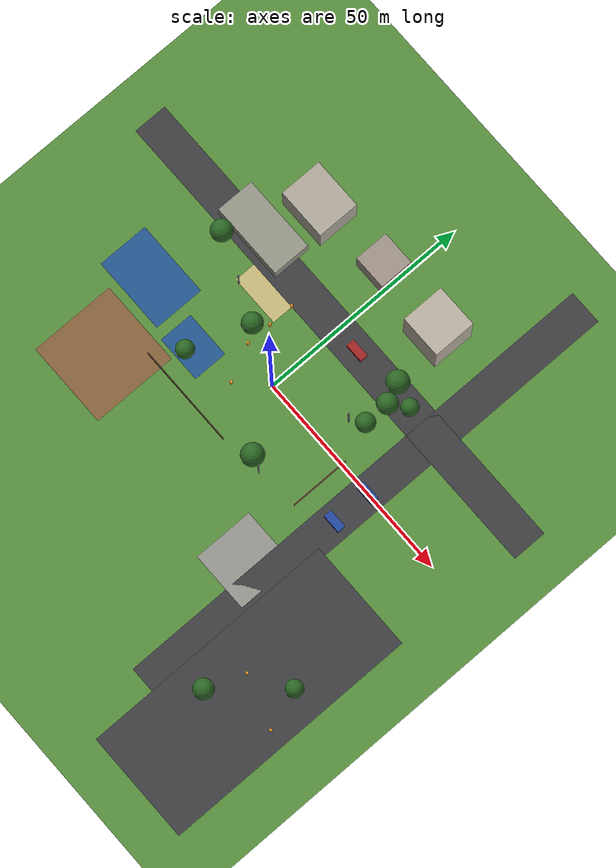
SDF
<?xml version="1.0" encoding="UTF-8"?>
<sdf version="1.9">
  <world name="eland_test">
    <physics type="ode">
      <max_step_size>0.004</max_step_size>
      <real_time_factor>1.0</real_time_factor>
      <real_time_update_rate>250</real_time_update_rate>
    </physics>
    <gravity>0 0 -9.8</gravity>
    <magnetic_field>6e-06 2.3e-05 -4.2e-05</magnetic_field>
    <atmosphere type="adiabatic"/>
    <scene>
      <grid>false</grid>
      <ambient>0.4 0.4 0.4 1</ambient>
      <background>0.7 0.7 0.7 1</background>
      <shadows>true</shadows>
    </scene>

    <model name="ground_plane">
      <static>true</static>
      <link name="link">
        <collision name="collision">
          <geometry>
            <plane>
              <normal>0 0 1</normal>
              <size>1 1</size>
            </plane>
          </geometry>
          <surface>
            <friction>
              <ode/>
            </friction>
            <bounce/>
            <contact/>
          </surface>
        </collision>
        <visual name="visual">
          <geometry>
            <plane>
              <normal>0 0 1</normal>
              <size>500 500</size>
            </plane>
          </geometry>
          <material>
            <ambient>0.28 0.46 0.20 1</ambient>
            <diffuse>0.34 0.55 0.24 1</diffuse>
            <specular>0.05 0.05 0.05 1</specular>
          </material>
        </visual>
        <pose>0 0 0 0 -0 0</pose>
      </link>
      <plugin filename="gz-sim-label-system" name="gz::sim::systems::Label">
        <label>1</label>
      </plugin>
    </model>

    <!-- PAVEMENT (4) -- road A, running east-west at y = +18 -->
    <model name="road_a">
      <static>true</static>
      <pose>0 18 0.01 0 0 0</pose>
      <link name="link">
        <collision name="collision">
          <geometry><box><size>120 8 0.02</size></box></geometry>
        </collision>
        <visual name="visual">
          <geometry><box><size>120 8 0.02</size></box></geometry>
          <material>
            <ambient>0.18 0.18 0.19 1</ambient>
            <diffuse>0.24 0.24 0.25 1</diffuse>
          </material>
        </visual>
      </link>
      <plugin filename="gz-sim-label-system" name="gz::sim::systems::Label">
        <label>2</label>
      </plugin>
    </model>

    <!-- PAVEMENT (4) -- road B, running north-south at x = +30 -->
    <model name="road_b">
      <static>true</static>
      <pose>30 0 0.01 0 0 0</pose>
      <link name="link">
        <collision name="collision">
          <geometry><box><size>8 120 0.02</size></box></geometry>
        </collision>
        <visual name="visual">
          <geometry><box><size>8 120 0.02</size></box></geometry>
          <material>
            <ambient>0.18 0.18 0.19 1</ambient>
            <diffuse>0.24 0.24 0.25 1</diffuse>
          </material>
        </visual>
      </link>
      <plugin filename="gz-sim-label-system" name="gz::sim::systems::Label">
        <label>2</label>
      </plugin>
    </model>

    <!-- DIRT (2) -->
    <model name="dirt_patch">
      <static>true</static>
      <pose>-28 -22 0.01 0 0 0</pose>
      <link name="link">
        <collision name="collision">
          <geometry><box><size>20 20 0.02</size></box></geometry>
        </collision>
        <visual name="visual">
          <geometry><box><size>20 20 0.02</size></box></geometry>
          <material>
            <ambient>0.42 0.31 0.19 1</ambient>
            <diffuse>0.52 0.38 0.23 1</diffuse>
          </material>
        </visual>
      </link>
      <plugin filename="gz-sim-label-system" name="gz::sim::systems::Label">
        <label>1</label>
      </plugin>
    </model>

    <!-- GRAVEL (3) -->
    <model name="gravel_patch">
      <static>true</static>
      <pose>24 -28 0.01 0 0 0</pose>
      <link name="link">
        <collision name="collision">
          <geometry><box><size>14 14 0.02</size></box></geometry>
        </collision>
        <visual name="visual">
          <geometry><box><size>14 14 0.02</size></box></geometry>
          <material>
            <ambient>0.45 0.45 0.43 1</ambient>
            <diffuse>0.58 0.58 0.55 1</diffuse>
          </material>
        </visual>
      </link>
      <plugin filename="gz-sim-label-system" name="gz::sim::systems::Label">
        <label>2</label>
      </plugin>
    </model>

    <!-- WATER (7) -- a pond. Risk 1.0: never landable, and unlike the
         buildings it is flat, so it is the case that catches a detector
         that reasons about geometry instead of semantics. -->
    <model name="pond">
      <static>true</static>
      <pose>-34 -4 0.01 0 0 0</pose>
      <link name="link">
        <visual name="visual">
          <geometry><box><size>18 12 0.02</size></box></geometry>
          <material>
            <ambient>0.10 0.25 0.42 1</ambient>
            <diffuse>0.14 0.34 0.56 1</diffuse>
            <specular>0.7 0.7 0.8 1</specular>
          </material>
        </visual>
      </link>
      <plugin filename="gz-sim-label-system" name="gz::sim::systems::Label">
        <label>5</label>
      </plugin>
    </model>

    <model name="yard_pavement">
      <static>true</static>
      <pose>45 -45 0.01 0 0 0</pose>
      <link name="link">
        <collision name="collision">
          <geometry><box><size>26 60 0.02</size></box></geometry>
        </collision>
        <visual name="visual">
          <geometry><box><size>26 60 0.02</size></box></geometry>
          <material>
            <ambient>0.18 0.18 0.19 1</ambient>
            <diffuse>0.24 0.24 0.25 1</diffuse>
          </material>
        </visual>
      </link>
      <plugin filename="gz-sim-label-system" name="gz::sim::systems::Label">
        <label>2</label>
      </plugin>
    </model>

    <!-- VEGETATION (5) on the yard. Not landable, not a hazard: they shrink
         the search space without invoking a separation radius. -->
    <model name="yard_tree_1">
      <static>true</static>
      <pose>39 -52 0 0 0 0</pose>
      <link name="link">
        <collision name="collision">
          <pose>0 0 4 0 0 0</pose>
          <geometry><cylinder><radius>2.3</radius><length>8</length></cylinder></geometry>
        </collision>
        <visual name="trunk">
          <pose>0 0 1.5 0 0 0</pose>
          <geometry><cylinder><radius>0.34</radius><length>3</length></cylinder></geometry>
          <material><ambient>0.25 0.16 0.09 1</ambient><diffuse>0.34 0.22 0.12 1</diffuse></material>
        </visual>
        <visual name="canopy">
          <pose>0 0 4.6 0 0 0</pose>
          <geometry><sphere><radius>2.3</radius></sphere></geometry>
          <material><ambient>0.12 0.30 0.10 1</ambient><diffuse>0.17 0.40 0.14 1</diffuse></material>
        </visual>
      </link>
      <plugin filename="gz-sim-label-system" name="gz::sim::systems::Label">
        <label>3</label>
      </plugin>
    </model>

    <model name="yard_tree_2">
      <static>true</static>
      <pose>51 -38 0 0 0 0</pose>
      <link name="link">
        <collision name="collision">
          <pose>0 0 3.5 0 0 0</pose>
          <geometry><cylinder><radius>2.0</radius><length>7</length></cylinder></geometry>
        </collision>
        <visual name="trunk">
          <pose>0 0 1.3 0 0 0</pose>
          <geometry><cylinder><radius>0.3</radius><length>2.6</length></cylinder></geometry>
          <material><ambient>0.25 0.16 0.09 1</ambient><diffuse>0.34 0.22 0.12 1</diffuse></material>
        </visual>
        <visual name="canopy">
          <pose>0 0 4.0 0 0 0</pose>
          <geometry><sphere><radius>2.0</radius></sphere></geometry>
          <material><ambient>0.12 0.30 0.10 1</ambient><diffuse>0.17 0.40 0.14 1</diffuse></material>
        </visual>
      </link>
      <plugin filename="gz-sim-label-system" name="gz::sim::systems::Label">
        <label>3</label>
      </plugin>
    </model>

    <model name="yard_person_1">
      <static>true</static>
      <pose>42 -43 0.9 0 0 0</pose>
      <link name="link">
        <collision name="collision">
          <geometry><cylinder><radius>0.3</radius><length>1.8</length></cylinder></geometry>
        </collision>
        <visual name="visual">
          <geometry><cylinder><radius>0.3</radius><length>1.8</length></cylinder></geometry>
          <material><ambient>0.70 0.45 0.10 1</ambient><diffuse>0.90 0.58 0.13 1</diffuse></material>
        </visual>
      </link>
      <plugin filename="gz-sim-label-system" name="gz::sim::systems::Label">
        <label>7</label>
      </plugin>
    </model>

    <model name="yard_person_2">
      <static>true</static>
      <pose>54 -47 0.9 0 0 0</pose>
      <link name="link">
        <collision name="collision">
          <geometry><cylinder><radius>0.3</radius><length>1.8</length></cylinder></geometry>
        </collision>
        <visual name="visual">
          <geometry><cylinder><radius>0.3</radius><length>1.8</length></cylinder></geometry>
          <material><ambient>0.70 0.45 0.10 1</ambient><diffuse>0.90 0.58 0.13 1</diffuse></material>
        </visual>
      </link>
      <plugin filename="gz-sim-label-system" name="gz::sim::systems::Label">
        <label>7</label>
      </plugin>
    </model>

    <!-- ============================================================
         BUILDING (6) -- the obstacle cluster north of road A.
         ============================================================ -->
    <model name="building_1">
      <static>true</static>
      <pose>-22 32 4.5 0 0 0</pose>
      <link name="link">
        <collision name="collision">
          <geometry><box><size>12 10 9</size></box></geometry>
        </collision>
        <visual name="visual">
          <geometry><box><size>12 10 9</size></box></geometry>
          <material>
            <ambient>0.55 0.52 0.48 1</ambient>
            <diffuse>0.68 0.65 0.60 1</diffuse>
          </material>
        </visual>
      </link>
      <plugin filename="gz-sim-label-system" name="gz::sim::systems::Label">
        <label>4</label>
      </plugin>
    </model>

    <model name="building_2">
      <static>true</static>
      <pose>-4 34 3 0 0 0</pose>
      <link name="link">
        <collision name="collision">
          <geometry><box><size>8 8 6</size></box></geometry>
        </collision>
        <visual name="visual">
          <geometry><box><size>8 8 6</size></box></geometry>
          <material>
            <ambient>0.50 0.45 0.42 1</ambient>
            <diffuse>0.62 0.57 0.53 1</diffuse>
          </material>
        </visual>
      </link>
      <plugin filename="gz-sim-label-system" name="gz::sim::systems::Label">
        <label>4</label>
      </plugin>
    </model>

    <model name="building_3">
      <static>true</static>
      <pose>14 33 6 0 0 0</pose>
      <link name="link">
        <collision name="collision">
          <geometry><box><size>10 10 12</size></box></geometry>
        </collision>
        <visual name="visual">
          <geometry><box><size>10 10 12</size></box></geometry>
          <material>
            <ambient>0.58 0.55 0.50 1</ambient>
            <diffuse>0.72 0.68 0.62 1</diffuse>
          </material>
        </visual>
      </link>
      <plugin filename="gz-sim-label-system" name="gz::sim::systems::Label">
        <label>4</label>
      </plugin>
    </model>

    <model name="tree_1">
      <static>true</static>
      <pose>-12 5 0 0 0 0</pose>
      <link name="link">
        <collision name="collision">
          <pose>0 0 4 0 0 0</pose>
          <geometry><cylinder><radius>2.4</radius><length>8</length></cylinder></geometry>
        </collision>
        <visual name="trunk">
          <pose>0 0 1.5 0 0 0</pose>
          <geometry><cylinder><radius>0.35</radius><length>3</length></cylinder></geometry>
          <material>
            <ambient>0.25 0.16 0.09 1</ambient>
            <diffuse>0.34 0.22 0.12 1</diffuse>
          </material>
        </visual>
        <visual name="canopy">
          <pose>0 0 4.6 0 0 0</pose>
          <geometry><sphere><radius>2.4</radius></sphere></geometry>
          <material>
            <ambient>0.12 0.30 0.10 1</ambient>
            <diffuse>0.17 0.40 0.14 1</diffuse>
          </material>
        </visual>
      </link>
      <plugin filename="gz-sim-label-system" name="gz::sim::systems::Label">
        <label>3</label>
      </plugin>
    </model>

    <model name="tree_2">
      <static>true</static>
      <pose>-17 -9 0 0 0 0</pose>
      <link name="link">
        <collision name="collision">
          <pose>0 0 3.5 0 0 0</pose>
          <geometry><cylinder><radius>2.1</radius><length>7</length></cylinder></geometry>
        </collision>
        <visual name="trunk">
          <pose>0 0 1.3 0 0 0</pose>
          <geometry><cylinder><radius>0.3</radius><length>2.6</length></cylinder></geometry>
          <material>
            <ambient>0.25 0.16 0.09 1</ambient>
            <diffuse>0.34 0.22 0.12 1</diffuse>
          </material>
        </visual>
        <visual name="canopy">
          <pose>0 0 4.0 0 0 0</pose>
          <geometry><sphere><radius>2.1</radius></sphere></geometry>
          <material>
            <ambient>0.12 0.30 0.10 1</ambient>
            <diffuse>0.17 0.40 0.14 1</diffuse>
          </material>
        </visual>
      </link>
      <plugin filename="gz-sim-label-system" name="gz::sim::systems::Label">
        <label>3</label>
      </plugin>
    </model>

    <model name="tree_3">
      <static>true</static>
      <pose>9 -13 0 0 0 0</pose>
      <link name="link">
        <collision name="collision">
          <pose>0 0 4 0 0 0</pose>
          <geometry><cylinder><radius>2.6</radius><length>8</length></cylinder></geometry>
        </collision>
        <visual name="trunk">
          <pose>0 0 1.6 0 0 0</pose>
          <geometry><cylinder><radius>0.38</radius><length>3.2</length></cylinder></geometry>
          <material>
            <ambient>0.25 0.16 0.09 1</ambient>
            <diffuse>0.34 0.22 0.12 1</diffuse>
          </material>
        </visual>
        <visual name="canopy">
          <pose>0 0 4.9 0 0 0</pose>
          <geometry><sphere><radius>2.6</radius></sphere></geometry>
          <material>
            <ambient>0.12 0.30 0.10 1</ambient>
            <diffuse>0.17 0.40 0.14 1</diffuse>
          </material>
        </visual>
      </link>
      <plugin filename="gz-sim-label-system" name="gz::sim::systems::Label">
        <label>3</label>
      </plugin>
    </model>

    <model name="tree_4">
      <static>true</static>
      <pose>19 9 0 0 0 0</pose>
      <link name="link">
        <collision name="collision">
          <pose>0 0 3.5 0 0 0</pose>
          <geometry><cylinder><radius>2.2</radius><length>7</length></cylinder></geometry>
        </collision>
        <visual name="trunk">
          <pose>0 0 1.4 0 0 0</pose>
          <geometry><cylinder><radius>0.32</radius><length>2.8</length></cylinder></geometry>
          <material>
            <ambient>0.25 0.16 0.09 1</ambient>
            <diffuse>0.34 0.22 0.12 1</diffuse>
          </material>
        </visual>
        <visual name="canopy">
          <pose>0 0 4.2 0 0 0</pose>
          <geometry><sphere><radius>2.2</radius></sphere></geometry>
          <material>
            <ambient>0.12 0.30 0.10 1</ambient>
            <diffuse>0.17 0.40 0.14 1</diffuse>
          </material>
        </visual>
      </link>
      <plugin filename="gz-sim-label-system" name="gz::sim::systems::Label">
        <label>3</label>
      </plugin>
    </model>

    <model name="tree_5">
      <static>true</static>
      <pose>-31 13 0 0 0 0</pose>
      <link name="link">
        <collision name="collision">
          <pose>0 0 4 0 0 0</pose>
          <geometry><cylinder><radius>2.5</radius><length>8</length></cylinder></geometry>
        </collision>
        <visual name="trunk">
          <pose>0 0 1.5 0 0 0</pose>
          <geometry><cylinder><radius>0.36</radius><length>3</length></cylinder></geometry>
          <material>
            <ambient>0.25 0.16 0.09 1</ambient>
            <diffuse>0.34 0.22 0.12 1</diffuse>
          </material>
        </visual>
        <visual name="canopy">
          <pose>0 0 4.7 0 0 0</pose>
          <geometry><sphere><radius>2.5</radius></sphere></geometry>
          <material>
            <ambient>0.12 0.30 0.10 1</ambient>
            <diffuse>0.17 0.40 0.14 1</diffuse>
          </material>
        </visual>
      </link>
      <plugin filename="gz-sim-label-system" name="gz::sim::systems::Label">
        <label>3</label>
      </plugin>
    </model>

    <model name="parked_vehicle">
      <static>true</static>
      <pose>6 18 0.75 0 0 0</pose>
      <link name="link">
        <collision name="collision">
          <geometry><box><size>4.4 1.9 1.5</size></box></geometry>
        </collision>
        <visual name="visual">
          <geometry><box><size>4.4 1.9 1.5</size></box></geometry>
          <material>
            <ambient>0.45 0.10 0.10 1</ambient>
            <diffuse>0.62 0.14 0.14 1</diffuse>
          </material>
        </visual>
      </link>
      <plugin filename="gz-sim-label-system" name="gz::sim::systems::Label">
        <label>6</label>
      </plugin>
    </model>

    <model name="person">
      <static>true</static>
      <pose>-6 -6 0.9 0 0 0</pose>
      <link name="link">
        <collision name="collision">
          <geometry><cylinder><radius>0.3</radius><length>1.8</length></cylinder></geometry>
        </collision>
        <visual name="visual">
          <geometry><cylinder><radius>0.3</radius><length>1.8</length></cylinder></geometry>
          <material>
            <ambient>0.70 0.45 0.10 1</ambient>
            <diffuse>0.90 0.58 0.13 1</diffuse>
          </material>
        </visual>
      </link>
      <plugin filename="gz-sim-label-system" name="gz::sim::systems::Label">
        <label>7</label>
      </plugin>
    </model>

    <model name="pond_near">
      <static>true</static>
      <pose>-17 -7 0.01 0 0 0</pose>
      <link name="link">
        <visual name="visual">
          <geometry><box><size>11 8 0.02</size></box></geometry>
          <material>
            <ambient>0.10 0.24 0.40 1</ambient>
            <diffuse>0.14 0.34 0.56 1</diffuse>
          </material>
        </visual>
      </link>
      <plugin filename="gz-sim-label-system" name="gz::sim::systems::Label">
        <label>5</label>
      </plugin>
    </model>

    <model name="fence_south_a">
      <static>true</static>
      <pose>-16.0 -15.0 0.9 0 0 0.0</pose>
      <link name="link">
        <collision name="collision">
          <geometry><box><size>12.0 0.12 1.8</size></box></geometry>
        </collision>
        <visual name="visual">
          <geometry><box><size>12.0 0.12 1.8</size></box></geometry>
          <material><ambient>0.36 0.27 0.18 1</ambient><diffuse>0.47 0.35 0.24 1</diffuse></material>
        </visual>
      </link>
      <plugin filename="gz-sim-label-system" name="gz::sim::systems::Label">
        <label>4</label>
      </plugin>
    </model>

    <model name="fence_south_b">
      <static>true</static>
      <pose>-4.0 -15.0 0.9 0 0 0.0</pose>
      <link name="link">
        <collision name="collision">
          <geometry><box><size>12.0 0.12 1.8</size></box></geometry>
        </collision>
        <visual name="visual">
          <geometry><box><size>12.0 0.12 1.8</size></box></geometry>
          <material><ambient>0.36 0.27 0.18 1</ambient><diffuse>0.47 0.35 0.24 1</diffuse></material>
        </visual>
      </link>
      <plugin filename="gz-sim-label-system" name="gz::sim::systems::Label">
        <label>4</label>
      </plugin>
    </model>

    <model name="fence_east">
      <static>true</static>
      <pose>22.0 -6.0 0.9 0 0 1.5708</pose>
      <link name="link">
        <collision name="collision">
          <geometry><box><size>14.0 0.12 1.8</size></box></geometry>
        </collision>
        <visual name="visual">
          <geometry><box><size>14.0 0.12 1.8</size></box></geometry>
          <material><ambient>0.36 0.27 0.18 1</ambient><diffuse>0.47 0.35 0.24 1</diffuse></material>
        </visual>
      </link>
      <plugin filename="gz-sim-label-system" name="gz::sim::systems::Label">
        <label>4</label>
      </plugin>
    </model>

    <model name="pole_1">
      <static>true</static>
      <pose>12.0 -14.0 4.0 0 0 0</pose>
      <link name="link">
        <collision name="collision">
          <geometry><cylinder><radius>0.16</radius><length>8.0</length></cylinder></geometry>
        </collision>
        <visual name="visual">
          <geometry><cylinder><radius>0.16</radius><length>8.0</length></cylinder></geometry>
          <material><ambient>0.32 0.32 0.38 1</ambient><diffuse>0.45 0.45 0.52 1</diffuse></material>
        </visual>
      </link>
      <plugin filename="gz-sim-label-system" name="gz::sim::systems::Label">
        <label>4</label>
      </plugin>
    </model>

    <model name="pole_2">
      <static>true</static>
      <pose>16.0 7.0 4.5 0 0 0</pose>
      <link name="link">
        <collision name="collision">
          <geometry><cylinder><radius>0.16</radius><length>9.0</length></cylinder></geometry>
        </collision>
        <visual name="visual">
          <geometry><cylinder><radius>0.16</radius><length>9.0</length></cylinder></geometry>
          <material><ambient>0.32 0.32 0.38 1</ambient><diffuse>0.45 0.45 0.52 1</diffuse></material>
        </visual>
      </link>
      <plugin filename="gz-sim-label-system" name="gz::sim::systems::Label">
        <label>4</label>
      </plugin>
    </model>

    <model name="pole_3">
      <static>true</static>
      <pose>-21.0 9.0 3.5 0 0 0</pose>
      <link name="link">
        <collision name="collision">
          <geometry><cylinder><radius>0.16</radius><length>7.0</length></cylinder></geometry>
        </collision>
        <visual name="visual">
          <geometry><cylinder><radius>0.16</radius><length>7.0</length></cylinder></geometry>
          <material><ambient>0.32 0.32 0.38 1</ambient><diffuse>0.45 0.45 0.52 1</diffuse></material>
        </visual>
      </link>
      <plugin filename="gz-sim-label-system" name="gz::sim::systems::Label">
        <label>4</label>
      </plugin>
    </model>

    <model name="sand_patch">
      <static>true</static>
      <pose>-16 14 0.01 0 0 0</pose>
      <link name="link">
        <collision name="collision">
          <geometry><box><size>12 10 0.02</size></box></geometry>
        </collision>
        <visual name="visual">
          <geometry><box><size>12 10 0.02</size></box></geometry>
          <material><ambient>0.62 0.58 0.40 1</ambient><diffuse>0.77 0.72 0.47 1</diffuse></material>
        </visual>
      </link>
      <plugin filename="gz-sim-label-system" name="gz::sim::systems::Label">
        <label>1</label>
      </plugin>
    </model>

    <model name="grove_tree_1">
      <static>true</static>
      <pose>19.0 15.0 0 0 0 0</pose>
      <link name="link">
        <collision name="collision">
          <pose>0 0 4.2 0 0 0</pose>
          <geometry><cylinder><radius>2.4</radius><length>5.4</length></cylinder></geometry>
        </collision>
        <visual name="trunk">
          <pose>0 0 1.5 0 0 0</pose>
          <geometry><cylinder><radius>0.28</radius><length>3.0</length></cylinder></geometry>
          <material><ambient>0.25 0.17 0.09 1</ambient><diffuse>0.34 0.23 0.12 1</diffuse></material>
        </visual>
        <visual name="canopy">
          <pose>0 0 4.4 0 0 0</pose>
          <geometry><sphere><radius>2.4</radius></sphere></geometry>
          <material><ambient>0.11 0.28 0.10 1</ambient><diffuse>0.17 0.40 0.14 1</diffuse></material>
        </visual>
      </link>
      <plugin filename="gz-sim-label-system" name="gz::sim::systems::Label">
        <label>3</label>
      </plugin>
    </model>

    <model name="grove_tree_2">
      <static>true</static>
      <pose>22.5 18.0 0 0 0 0</pose>
      <link name="link">
        <collision name="collision">
          <pose>0 0 3.6 0 0 0</pose>
          <geometry><cylinder><radius>2.0</radius><length>4.6</length></cylinder></geometry>
        </collision>
        <visual name="trunk">
          <pose>0 0 1.3 0 0 0</pose>
          <geometry><cylinder><radius>0.28</radius><length>2.6</length></cylinder></geometry>
          <material><ambient>0.25 0.17 0.09 1</ambient><diffuse>0.34 0.23 0.12 1</diffuse></material>
        </visual>
        <visual name="canopy">
          <pose>0 0 3.8 0 0 0</pose>
          <geometry><sphere><radius>2.0</radius></sphere></geometry>
          <material><ambient>0.11 0.28 0.10 1</ambient><diffuse>0.17 0.40 0.14 1</diffuse></material>
        </visual>
      </link>
      <plugin filename="gz-sim-label-system" name="gz::sim::systems::Label">
        <label>3</label>
      </plugin>
    </model>

    <model name="grove_tree_3">
      <static>true</static>
      <pose>17.0 19.5 0 0 0 0</pose>
      <link name="link">
        <collision name="collision">
          <pose>0 0 4.5 0 0 0</pose>
          <geometry><cylinder><radius>2.6</radius><length>5.8</length></cylinder></geometry>
        </collision>
        <visual name="trunk">
          <pose>0 0 1.6 0 0 0</pose>
          <geometry><cylinder><radius>0.28</radius><length>3.2</length></cylinder></geometry>
          <material><ambient>0.25 0.17 0.09 1</ambient><diffuse>0.34 0.23 0.12 1</diffuse></material>
        </visual>
        <visual name="canopy">
          <pose>0 0 4.8 0 0 0</pose>
          <geometry><sphere><radius>2.6</radius></sphere></geometry>
          <material><ambient>0.11 0.28 0.10 1</ambient><diffuse>0.17 0.40 0.14 1</diffuse></material>
        </visual>
      </link>
      <plugin filename="gz-sim-label-system" name="gz::sim::systems::Label">
        <label>3</label>
      </plugin>
    </model>

    <model name="warehouse">
      <static>true</static>
      <pose>-26 20 2 0 0 0</pose>
      <link name="link">
        <collision name="collision">
          <geometry><box><size>18 9 4</size></box></geometry>
        </collision>
        <visual name="visual">
          <geometry><box><size>18 9 4</size></box></geometry>
          <material><ambient>0.44 0.44 0.40 1</ambient><diffuse>0.58 0.58 0.53 1</diffuse></material>
        </visual>
      </link>
      <plugin filename="gz-sim-label-system" name="gz::sim::systems::Label">
        <label>4</label>
      </plugin>
    </model>

    <model name="dyn_vehicle_0">
      <static>true</static>
      <pose>30.0 0.0 0.75 0 0 3.1416</pose>
      <link name="link">
        <collision name="collision">
          <geometry><box><size>4.4 1.9 1.5</size></box></geometry>
        </collision>
        <visual name="visual">
          <geometry><box><size>4.4 1.9 1.5</size></box></geometry>
          <material>
            <ambient>0.10 0.20 0.45 1</ambient>
            <diffuse>0.14 0.28 0.62 1</diffuse>
          </material>
        </visual>
      </link>
      <plugin filename="gz-sim-label-system" name="gz::sim::systems::Label">
        <label>6</label>
      </plugin>
    </model>

    <model name="dyn_vehicle_1">
      <static>true</static>
      <pose>30.0 -9.0 0.75 0 0 3.1416</pose>
      <link name="link">
        <collision name="collision">
          <geometry><box><size>4.4 1.9 1.5</size></box></geometry>
        </collision>
        <visual name="visual">
          <geometry><box><size>4.4 1.9 1.5</size></box></geometry>
          <material>
            <ambient>0.10 0.20 0.45 1</ambient>
            <diffuse>0.14 0.28 0.62 1</diffuse>
          </material>
        </visual>
      </link>
      <plugin filename="gz-sim-label-system" name="gz::sim::systems::Label">
        <label>6</label>
      </plugin>
    </model>

    <model name="dyn_person_0">
      <static>true</static>
      <pose>-10.0 8.0 0.9 0 0 0</pose>
      <link name="link">
        <collision name="collision">
          <geometry><cylinder><radius>0.3</radius><length>1.8</length></cylinder></geometry>
        </collision>
        <visual name="visual">
          <geometry><cylinder><radius>0.3</radius><length>1.8</length></cylinder></geometry>
          <material>
            <ambient>0.70 0.45 0.10 1</ambient>
            <diffuse>0.90 0.58 0.13 1</diffuse>
          </material>
        </visual>
      </link>
      <plugin filename="gz-sim-label-system" name="gz::sim::systems::Label">
        <label>7</label>
      </plugin>
    </model>

    <model name="dyn_person_1">
      <static>true</static>
      <pose>-10.0 14.0 0.9 0 0 0</pose>
      <link name="link">
        <collision name="collision">
          <geometry><cylinder><radius>0.3</radius><length>1.8</length></cylinder></geometry>
        </collision>
        <visual name="visual">
          <geometry><cylinder><radius>0.3</radius><length>1.8</length></cylinder></geometry>
          <material>
            <ambient>0.70 0.45 0.10 1</ambient>
            <diffuse>0.90 0.58 0.13 1</diffuse>
          </material>
        </visual>
      </link>
      <plugin filename="gz-sim-label-system" name="gz::sim::systems::Label">
        <label>7</label>
      </plugin>
    </model>

    <model name="dyn_person_2">
      <static>true</static>
      <pose>-10.0 2.0 0.9 0 0 0</pose>
      <link name="link">
        <collision name="collision">
          <geometry><cylinder><radius>0.3</radius><length>1.8</length></cylinder></geometry>
        </collision>
        <visual name="visual">
          <geometry><cylinder><radius>0.3</radius><length>1.8</length></cylinder></geometry>
          <material>
            <ambient>0.70 0.45 0.10 1</ambient>
            <diffuse>0.90 0.58 0.13 1</diffuse>
          </material>
        </visual>
      </link>
      <plugin filename="gz-sim-label-system" name="gz::sim::systems::Label">
        <label>7</label>
      </plugin>
    </model>

    <light name="sunUTC" type="directional">
      <pose>0 0 500 0 -0 0</pose>
      <cast_shadows>true</cast_shadows>
      <intensity>1</intensity>
      <direction>0.001 0.625 -0.78</direction>
      <diffuse>0.904 0.904 0.904 1</diffuse>
      <specular>0.271 0.271 0.271 1</specular>
      <attenuation>
        <range>2000</range>
        <linear>0</linear>
        <constant>1</constant>
        <quadratic>0</quadratic>
      </attenuation>
      <spot>
        <inner_angle>0</inner_angle>
        <outer_angle>0</outer_angle>
        <falloff>0</falloff>
      </spot>
    </light>

    <spherical_coordinates>
      <surface_model>EARTH_WGS84</surface_model>
      <world_frame_orientation>ENU</world_frame_orientation>
      <latitude_deg>47.397971057728974</latitude_deg>
      <longitude_deg> 8.546163739800146</longitude_deg>
      <elevation>0</elevation>
    </spherical_coordinates>
  </world>
</sdf>
